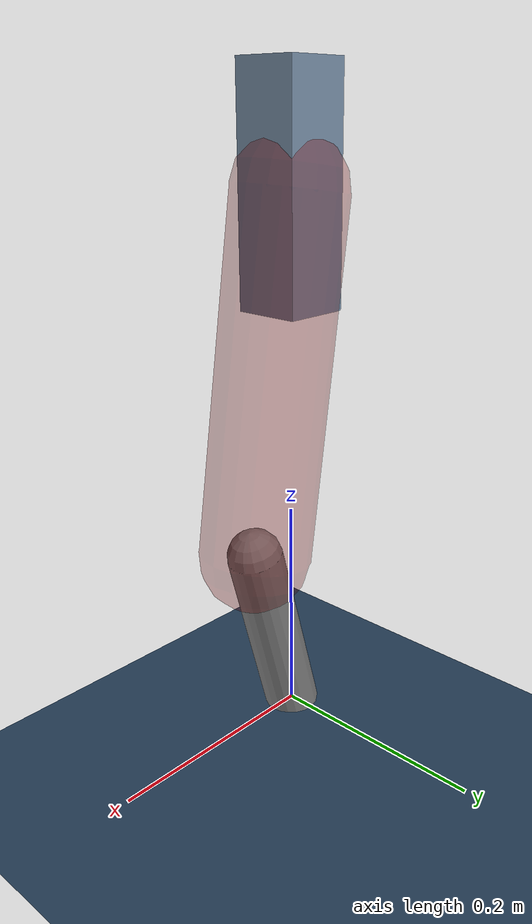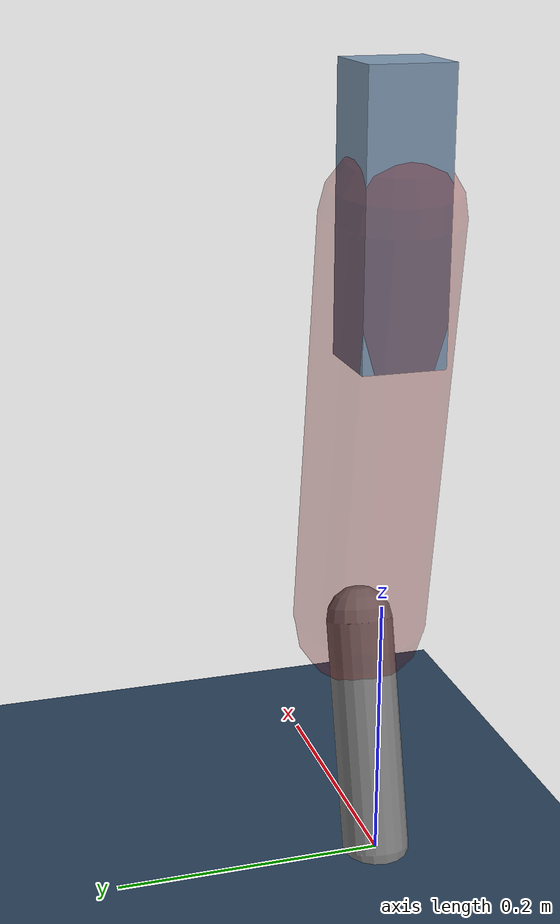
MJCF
<mujoco model="Hopper2D">
	<compiler inertiafromgeom="true" angle="radian" />
	<option timestep="0.001" integrator="implicit" cone="elliptic" solver="Newton" tolerance="1e-10" />

	<default>
		<geom contype="1" conaffinity="1" condim="3" friction="2 0.005 0.0001" solref="0.005 1" />
		<joint limited="true" damping="0.1" />
	</default>

	<asset>
		<texture name="skybox" type="skybox" builtin="gradient" rgb1=".4 .6 .8" rgb2="0 0 0" width="800" height="800" />
		<texture name="grid" type="2d" builtin="checker" rgb1=".1 .2 .3" rgb2=".2 .3 .4" width="300" height="300" mark="edge" markrgb=".2 .3 .4" />
		<material name="ground" texture="grid" texrepeat="1 1" texuniform="true" reflectance="0.1" />
		<material name="leg" rgba="0.5 0.6 0.7 1" />
	</asset>

	<worldbody>

		<geom name="floor" type="plane" size="5 5 0.25" material="ground" />

		<light directional="false" diffuse="0.8 0.8 0.8" specular="0.3 0.3 0.3" pos="0 0 2" dir="0 0 -1" />
		<light mode="targetbodycom" target="base" directional="false" diffuse="0.8 0.8 0.8" specular="0.3 0.3 0.3" pos="0 0 2" dir="0 0 -1" />

		<camera name="fixed" pos="0 -2 1" xyaxes="1 0 0 0 0 1" />
		<camera name="tracking" mode="trackcom" pos="0 -3 1" />

		<body name="root" pos="0 0 0.4833292098250964">
			<joint name="slide_x" type="slide" axis="1 0 0" range="-100 100" />
			<joint name="slide_z" type="slide" axis="0 0 1" range="0 10" />

			<body name="base" pos="0 0 0">
				<geom name="torso" type="box" size="0.03 0.03 0.1" mass="2.117" material="leg" />

				<body name="link1" pos="0 0 0" euler="0 1.420562341249757 0">
					<joint type="hinge" axis="0 -1 0" pos="0 0 0" name="hinge1" limited="true" range="-3.14 3.14" stiffness="0" damping="0.1" />
					<geom name="thigh" type="capsule" fromto="0 0 0 0.31618980715238104 0 0" size="0.05" rgba="0.5 0 0 0.3" mass="1.0328124793114288" />

					<body name="link2" pos="0.31618980715238104 0 0" euler="0 0.4206751905416815 0">
						<joint type="hinge" axis="0 -1 0" pos="0 0 0" name="hinge2" limited="true" range="-3.14 3.14" stiffness="0" damping="0.1" />
						<geom name="shank" type="capsule" fromto="0 0 0 0.17713940267271538 0 0" size="0.025" mass="0.38142546240544384" />

					</body>
				</body>
			</body>
		</body>
	</worldbody>

	<actuator>
		<motor name="torque1" joint="hinge1" ctrlrange="-60.44096667570642 60.44096667570642" ctrllimited="true" gear="1" />
		<motor name="torque2" joint="hinge2" ctrlrange="-87.38161223267653 87.38161223267653" ctrllimited="true" gear="1" />
	</actuator>
</mujoco>
